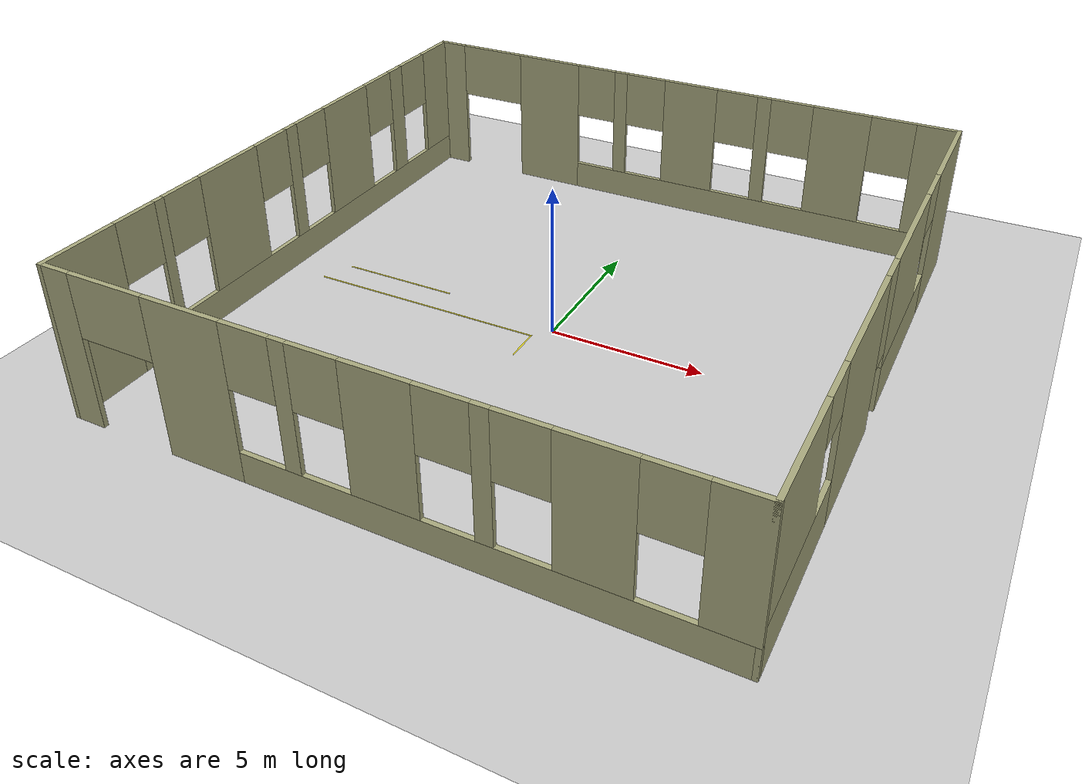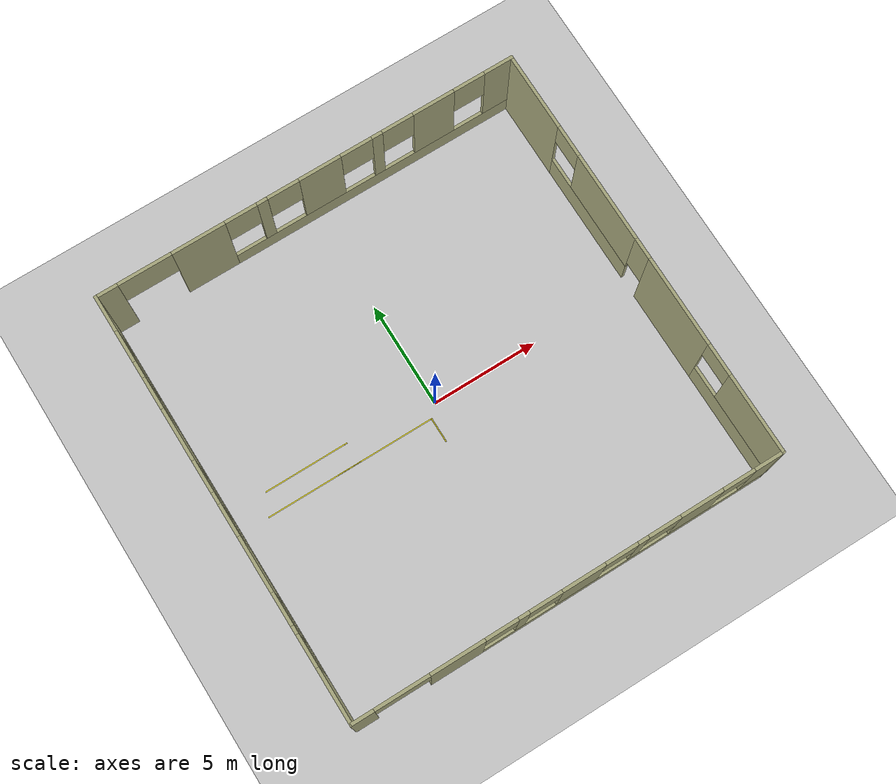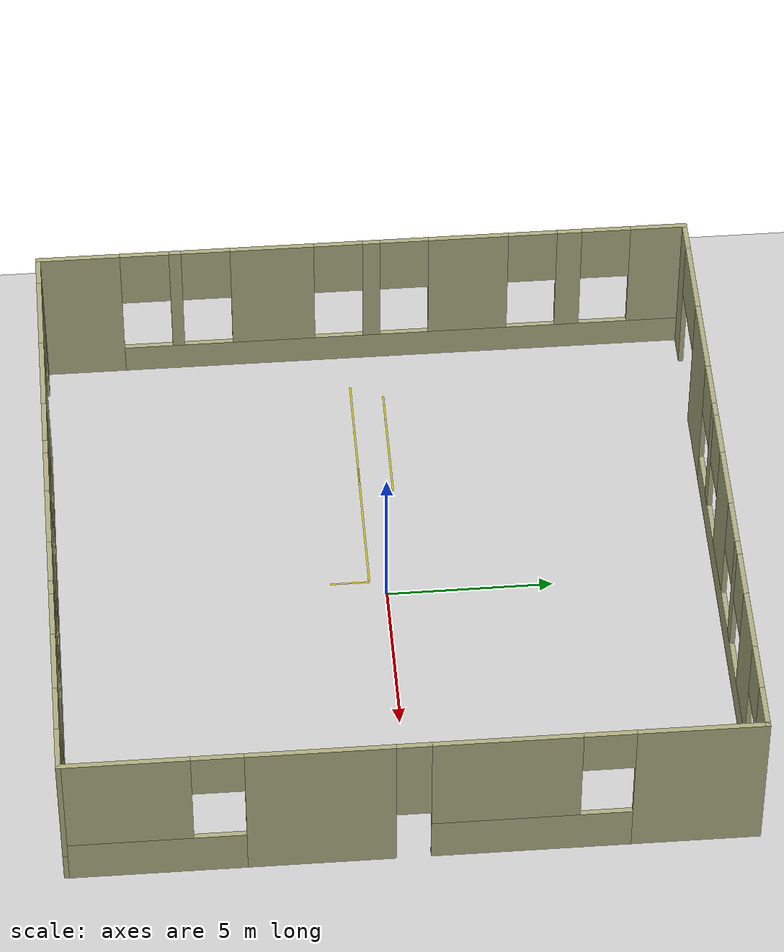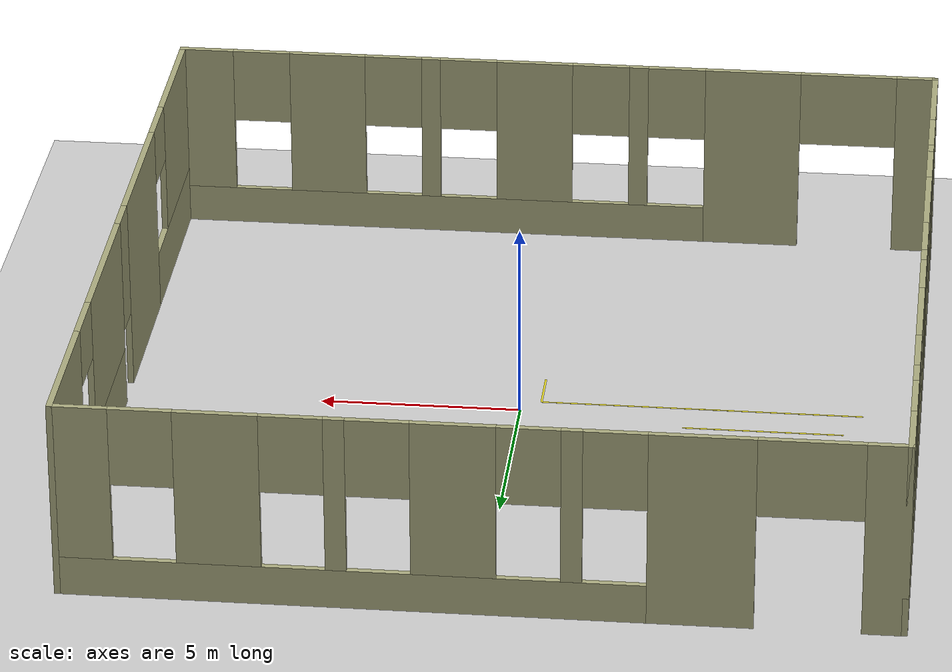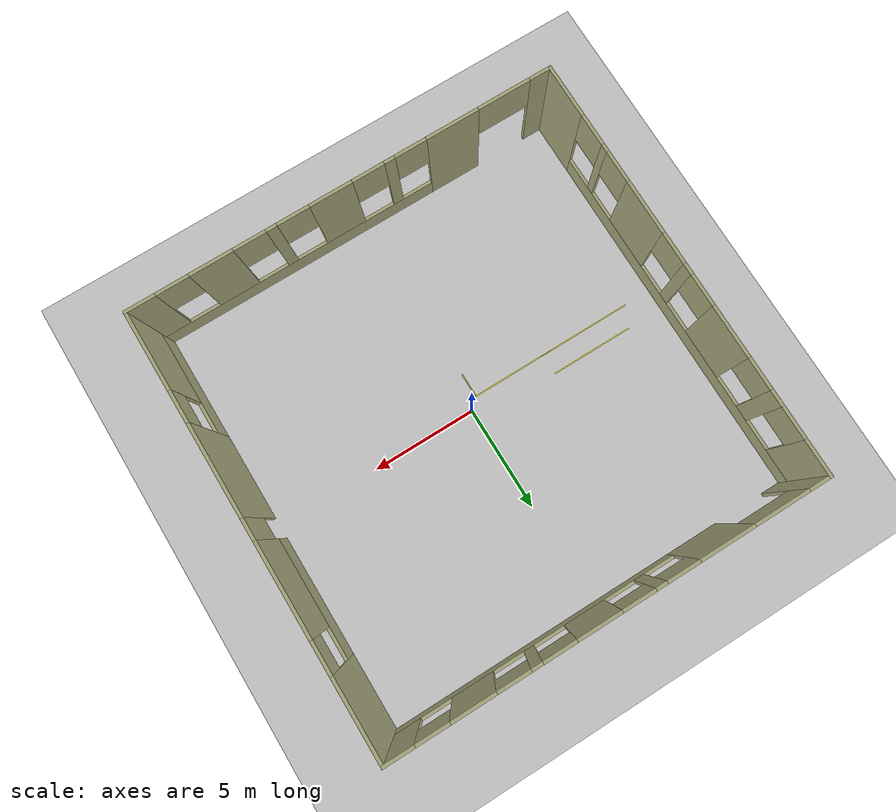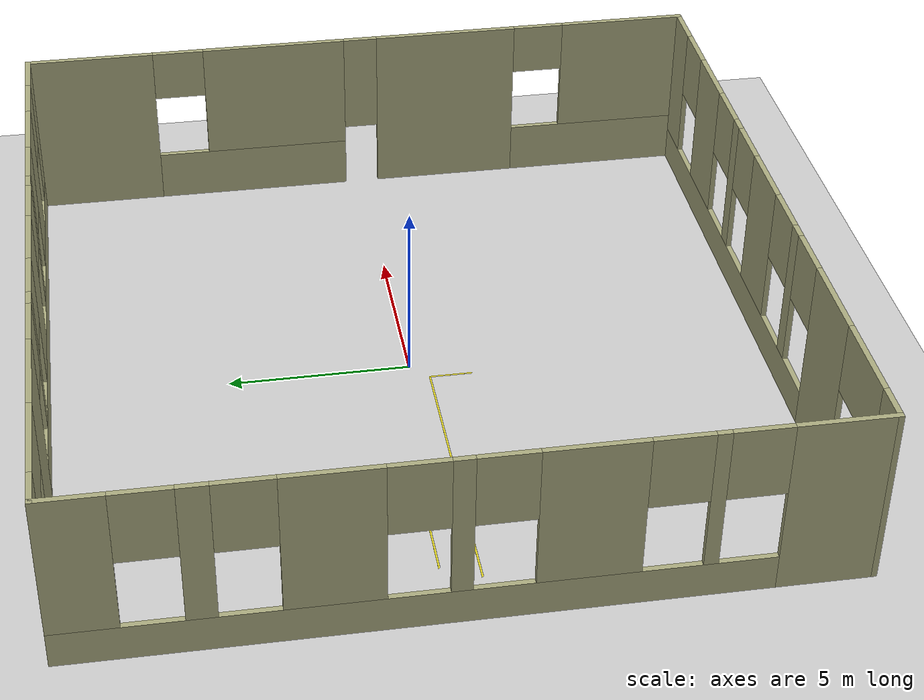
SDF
<sdf version="1.7">
 <world name="default">
  <model name="ground_plane">
   <static>1</static>
   <link name="link">
    <collision name="collision">
     <geometry><plane><normal>0 0 1</normal><size>100 100</size></plane></geometry>
     <surface>
      <contact><collide_bitmask>65535</collide_bitmask></contact>
      <friction><ode><mu>100</mu><mu2>50</mu2></ode></friction>
     </surface>
    </collision>
    <visual name="visual">
     <cast_shadows>0</cast_shadows>
     <geometry><plane><normal>0 0 1</normal><size>100 100</size></plane></geometry>
     <material>
      <script><uri>file://media/materials/scripts/gazebo.material</uri><name>Gazebo/Grey</name></script>
     </material>
    </visual>
   </link>
  </model>
  <model name="20x20">
   <link name="Wall_10">
    <pose>0 -9.925 0 0 -0 0</pose>
    <visual name="Wall_10_Visual_0">
     <pose>-9.46251 0 2.5 0 -0 0</pose>
     <geometry><box><size>1.07503 0.15 5</size></box></geometry>
     <material>
      <script><uri>file://media/materials/scripts/gazebo.material</uri><name>Gazebo/Grey</name></script>
      <ambient>0.666667 0.666667 0.498039 1</ambient>
     </material>
    </visual>
    <collision name="Wall_10_Collision_0">
     <geometry><box><size>1.07503 0.15 5</size></box></geometry>
     <pose>-9.46251 0 2.5 0 -0 0</pose>
    </collision>
    <visual name="Wall_10_Visual_1">
     <pose>-5.175 0 2.5 0 -0 0</pose>
     <geometry><box><size>2.5 0.15 5</size></box></geometry>
     <material>
      <script><uri>file://media/materials/scripts/gazebo.material</uri><name>Gazebo/Grey</name></script>
      <ambient>0.666667 0.666667 0.498039 1</ambient>
     </material>
    </visual>
    <collision name="Wall_10_Collision_1">
     <geometry><box><size>2.5 0.15 5</size></box></geometry>
     <pose>-5.175 0 2.5 0 -0 0</pose>
    </collision>
    <visual name="Wall_10_Visual_2">
     <pose>3.03751 0 0.5 0 -0 0</pose>
     <geometry><box><size>13.925 0.15 1</size></box></geometry>
     <material>
      <script><uri>file://media/materials/scripts/gazebo.material</uri><name>Gazebo/Grey</name></script>
      <ambient>0.666667 0.666667 0.498039 1</ambient>
     </material>
    </visual>
    <collision name="Wall_10_Collision_2">
     <geometry><box><size>13.925 0.15 1</size></box></geometry>
     <pose>3.03751 0 0.5 0 -0 0</pose>
    </collision>
    <visual name="Wall_10_Visual_3">
     <pose>-2.175 0 3 0 -0 0</pose>
     <geometry><box><size>0.5 0.15 4</size></box></geometry>
     <material>
      <script><uri>file://media/materials/scripts/gazebo.material</uri><name>Gazebo/Grey</name></script>
      <ambient>0.666667 0.666667 0.498039 1</ambient>
     </material>
    </visual>
    <collision name="Wall_10_Collision_3">
     <geometry><box><size>0.5 0.15 4</size></box></geometry>
     <pose>-2.175 0 3 0 -0 0</pose>
    </collision>
    <visual name="Wall_10_Visual_4">
     <pose>0.575 0 3 0 -0 0</pose>
     <geometry><box><size>2 0.15 4</size></box></geometry>
     <material>
      <script><uri>file://media/materials/scripts/gazebo.material</uri><name>Gazebo/Grey</name></script>
      <ambient>0.666667 0.666667 0.498039 1</ambient>
     </material>
    </visual>
    <collision name="Wall_10_Collision_4">
     <geometry><box><size>2 0.15 4</size></box></geometry>
     <pose>0.575 0 3 0 -0 0</pose>
    </collision>
    <visual name="Wall_10_Visual_5">
     <pose>3.325 0 3 0 -0 0</pose>
     <geometry><box><size>0.5 0.15 4</size></box></geometry>
     <material>
      <script><uri>file://media/materials/scripts/gazebo.material</uri><name>Gazebo/Grey</name></script>
      <ambient>0.666667 0.666667 0.498039 1</ambient>
     </material>
    </visual>
    <collision name="Wall_10_Collision_5">
     <geometry><box><size>0.5 0.15 4</size></box></geometry>
     <pose>3.325 0 3 0 -0 0</pose>
    </collision>
    <visual name="Wall_10_Visual_6">
     <pose>6.075 0 3 0 -0 0</pose>
     <geometry><box><size>2 0.15 4</size></box></geometry>
     <material>
      <script><uri>file://media/materials/scripts/gazebo.material</uri><name>Gazebo/Grey</name></script>
      <ambient>0.666667 0.666667 0.498039 1</ambient>
     </material>
    </visual>
    <collision name="Wall_10_Collision_6">
     <geometry><box><size>2 0.15 4</size></box></geometry>
     <pose>6.075 0 3 0 -0 0</pose>
    </collision>
    <visual name="Wall_10_Visual_7">
     <pose>9.28752 0 3 0 -0 0</pose>
     <geometry><box><size>1.42503 0.15 4</size></box></geometry>
     <material>
      <script><uri>file://media/materials/scripts/gazebo.material</uri><name>Gazebo/Grey</name></script>
      <ambient>0.666667 0.666667 0.498039 1</ambient>
     </material>
    </visual>
    <collision name="Wall_10_Collision_7">
     <geometry><box><size>1.42503 0.15 4</size></box></geometry>
     <pose>9.28752 0 3 0 -0 0</pose>
    </collision>
    <visual name="Wall_10_Visual_8">
     <pose>-7.675 0 4 0 -0 0</pose>
     <geometry><box><size>2.5 0.15 2</size></box></geometry>
     <material>
      <script><uri>file://media/materials/scripts/gazebo.material</uri><name>Gazebo/Grey</name></script>
      <ambient>0.666667 0.666667 0.498039 1</ambient>
     </material>
    </visual>
    <collision name="Wall_10_Collision_8">
     <geometry><box><size>2.5 0.15 2</size></box></geometry>
     <pose>-7.675 0 4 0 -0 0</pose>
    </collision>
    <visual name="Wall_10_Visual_9">
     <pose>-3.175 0 4 0 -0 0</pose>
     <geometry><box><size>1.5 0.15 2</size></box></geometry>
     <material>
      <script><uri>file://media/materials/scripts/gazebo.material</uri><name>Gazebo/Grey</name></script>
      <ambient>0.666667 0.666667 0.498039 1</ambient>
     </material>
    </visual>
    <collision name="Wall_10_Collision_9">
     <geometry><box><size>1.5 0.15 2</size></box></geometry>
     <pose>-3.175 0 4 0 -0 0</pose>
    </collision>
    <visual name="Wall_10_Visual_10">
     <pose>-1.175 0 4 0 -0 0</pose>
     <geometry><box><size>1.5 0.15 2</size></box></geometry>
     <material>
      <script><uri>file://media/materials/scripts/gazebo.material</uri><name>Gazebo/Grey</name></script>
      <ambient>0.666667 0.666667 0.498039 1</ambient>
     </material>
    </visual>
    <collision name="Wall_10_Collision_10">
     <geometry><box><size>1.5 0.15 2</size></box></geometry>
     <pose>-1.175 0 4 0 -0 0</pose>
    </collision>
    <visual name="Wall_10_Visual_11">
     <pose>2.325 0 4 0 -0 0</pose>
     <geometry><box><size>1.5 0.15 2</size></box></geometry>
     <material>
      <script><uri>file://media/materials/scripts/gazebo.material</uri><name>Gazebo/Grey</name></script>
      <ambient>0.666667 0.666667 0.498039 1</ambient>
     </material>
    </visual>
    <collision name="Wall_10_Collision_11">
     <geometry><box><size>1.5 0.15 2</size></box></geometry>
     <pose>2.325 0 4 0 -0 0</pose>
    </collision>
    <visual name="Wall_10_Visual_12">
     <pose>4.325 0 4 0 -0 0</pose>
     <geometry><box><size>1.5 0.15 2</size></box></geometry>
     <material>
      <script><uri>file://media/materials/scripts/gazebo.material</uri><name>Gazebo/Grey</name></script>
      <ambient>0.666667 0.666667 0.498039 1</ambient>
     </material>
    </visual>
    <collision name="Wall_10_Collision_12">
     <geometry><box><size>1.5 0.15 2</size></box></geometry>
     <pose>4.325 0 4 0 -0 0</pose>
    </collision>
    <visual name="Wall_10_Visual_13">
     <pose>7.825 0 4 0 -0 0</pose>
     <geometry><box><size>1.5 0.15 2</size></box></geometry>
     <material>
      <script><uri>file://media/materials/scripts/gazebo.material</uri><name>Gazebo/Grey</name></script>
      <ambient>0.666667 0.666667 0.498039 1</ambient>
     </material>
    </visual>
    <collision name="Wall_10_Collision_13">
     <geometry><box><size>1.5 0.15 2</size></box></geometry>
     <pose>7.825 0 4 0 -0 0</pose>
    </collision>
   </link>
   <link name="Wall_41">
    <pose>9.925 0 0 0 0 -1.5708</pose>
    <visual name="Wall_41_Visual_0">
     <pose>-8.125 0 2.5 0 -0 0</pose>
     <geometry><box><size>3.75 0.15 5</size></box></geometry>
     <material>
      <script><uri>file://media/materials/scripts/gazebo.material</uri><name>Gazebo/Grey</name></script>
      <ambient>0.666667 0.666667 0.498039 1</ambient>
     </material>
    </visual>
    <collision name="Wall_41_Collision_0">
     <geometry><box><size>3.75 0.15 5</size></box></geometry>
     <pose>-8.125 0 2.5 0 -0 0</pose>
    </collision>
    <visual name="Wall_41_Visual_1">
     <pose>2.625 0 2.5 0 -0 0</pose>
     <geometry><box><size>4.25 0.15 5</size></box></geometry>
     <material>
      <script><uri>file://media/materials/scripts/gazebo.material</uri><name>Gazebo/Grey</name></script>
      <ambient>0.666667 0.666667 0.498039 1</ambient>
     </material>
    </visual>
    <collision name="Wall_41_Collision_1">
     <geometry><box><size>4.25 0.15 5</size></box></geometry>
     <pose>2.625 0 2.5 0 -0 0</pose>
    </collision>
    <visual name="Wall_41_Visual_2">
     <pose>-3.375 0 0.75 0 -0 0</pose>
     <geometry><box><size>5.75 0.15 1.5</size></box></geometry>
     <material>
      <script><uri>file://media/materials/scripts/gazebo.material</uri><name>Gazebo/Grey</name></script>
      <ambient>0.666667 0.666667 0.498039 1</ambient>
     </material>
    </visual>
    <collision name="Wall_41_Collision_2">
     <geometry><box><size>5.75 0.15 1.5</size></box></geometry>
     <pose>-3.375 0 0.75 0 -0 0</pose>
    </collision>
    <visual name="Wall_41_Visual_3">
     <pose>7.375 0 0.75 0 -0 0</pose>
     <geometry><box><size>5.25 0.15 1.5</size></box></geometry>
     <material>
      <script><uri>file://media/materials/scripts/gazebo.material</uri><name>Gazebo/Grey</name></script>
      <ambient>0.666667 0.666667 0.498039 1</ambient>
     </material>
    </visual>
    <collision name="Wall_41_Collision_3">
     <geometry><box><size>5.25 0.15 1.5</size></box></geometry>
     <pose>7.375 0 0.75 0 -0 0</pose>
    </collision>
    <visual name="Wall_41_Visual_4">
     <pose>-2.625 0 3.25 0 -0 0</pose>
     <geometry><box><size>4.25 0.15 3.5</size></box></geometry>
     <material>
      <script><uri>file://media/materials/scripts/gazebo.material</uri><name>Gazebo/Grey</name></script>
      <ambient>0.666667 0.666667 0.498039 1</ambient>
     </material>
    </visual>
    <collision name="Wall_41_Collision_4">
     <geometry><box><size>4.25 0.15 3.5</size></box></geometry>
     <pose>-2.625 0 3.25 0 -0 0</pose>
    </collision>
    <visual name="Wall_41_Visual_5">
     <pose>-2.625 0 3.25 0 -0 0</pose>
     <geometry><box><size>4.25 0.15 3.5</size></box></geometry>
     <material>
      <script><uri>file://media/materials/scripts/gazebo.material</uri><name>Gazebo/Grey</name></script>
      <ambient>0.666667 0.666667 0.498039 1</ambient>
     </material>
    </visual>
    <collision name="Wall_41_Collision_5">
     <geometry><box><size>4.25 0.15 3.5</size></box></geometry>
     <pose>-2.625 0 3.25 0 -0 0</pose>
    </collision>
    <visual name="Wall_41_Visual_6">
     <pose>8.125 0 3.25 0 -0 0</pose>
     <geometry><box><size>3.75 0.15 3.5</size></box></geometry>
     <material>
      <script><uri>file://media/materials/scripts/gazebo.material</uri><name>Gazebo/Grey</name></script>
      <ambient>0.666667 0.666667 0.498039 1</ambient>
     </material>
    </visual>
    <collision name="Wall_41_Collision_6">
     <geometry><box><size>3.75 0.15 3.5</size></box></geometry>
     <pose>8.125 0 3.25 0 -0 0</pose>
    </collision>
    <visual name="Wall_41_Visual_7">
     <pose>0 0 3.5 0 -0 0</pose>
     <geometry><box><size>1 0.15 3</size></box></geometry>
     <material>
      <script><uri>file://media/materials/scripts/gazebo.material</uri><name>Gazebo/Grey</name></script>
      <ambient>0.666667 0.666667 0.498039 1</ambient>
     </material>
    </visual>
    <collision name="Wall_41_Collision_7">
     <geometry><box><size>1 0.15 3</size></box></geometry>
     <pose>0 0 3.5 0 -0 0</pose>
    </collision>
    <visual name="Wall_41_Visual_8">
     <pose>0 0 3.5 0 -0 0</pose>
     <geometry><box><size>1 0.15 3</size></box></geometry>
     <material>
      <script><uri>file://media/materials/scripts/gazebo.material</uri><name>Gazebo/Grey</name></script>
      <ambient>0.666667 0.666667 0.498039 1</ambient>
     </material>
    </visual>
    <collision name="Wall_41_Collision_8">
     <geometry><box><size>1 0.15 3</size></box></geometry>
     <pose>0 0 3.5 0 -0 0</pose>
    </collision>
    <visual name="Wall_41_Visual_9">
     <pose>-5.5 0 4.25 0 -0 0</pose>
     <geometry><box><size>1.5 0.15 1.5</size></box></geometry>
     <material>
      <script><uri>file://media/materials/scripts/gazebo.material</uri><name>Gazebo/Grey</name></script>
      <ambient>0.666667 0.666667 0.498039 1</ambient>
     </material>
    </visual>
    <collision name="Wall_41_Collision_9">
     <geometry><box><size>1.5 0.15 1.5</size></box></geometry>
     <pose>-5.5 0 4.25 0 -0 0</pose>
    </collision>
    <visual name="Wall_41_Visual_10">
     <pose>5.5 0 4.25 0 -0 0</pose>
     <geometry><box><size>1.5 0.15 1.5</size></box></geometry>
     <material>
      <script><uri>file://media/materials/scripts/gazebo.material</uri><name>Gazebo/Grey</name></script>
      <ambient>0.666667 0.666667 0.498039 1</ambient>
     </material>
    </visual>
    <collision name="Wall_41_Collision_10">
     <geometry><box><size>1.5 0.15 1.5</size></box></geometry>
     <pose>5.5 0 4.25 0 -0 0</pose>
    </collision>
   </link>
   <link name="Wall_6">
    <pose>-9.925 0 0 0 -0 1.5708</pose>
    <visual name="Wall_6_Visual_0">
     <pose>-8.71763 0 2.5 0 -0 0</pose>
     <geometry><box><size>2.56474 0.15 5</size></box></geometry>
     <material>
      <script><uri>file://media/materials/scripts/gazebo.material</uri><name>Gazebo/Grey</name></script>
      <ambient>0.666667 0.666667 0.498039 1</ambient>
     </material>
    </visual>
    <collision name="Wall_6_Collision_0">
     <geometry><box><size>2.56474 0.15 5</size></box></geometry>
     <pose>-8.71763 0 2.5 0 -0 0</pose>
    </collision>
    <visual name="Wall_6_Visual_1">
     <pose>1.28237 0 0.5 0 -0 0</pose>
     <geometry><box><size>17.4353 0.15 1</size></box></geometry>
     <material>
      <script><uri>file://media/materials/scripts/gazebo.material</uri><name>Gazebo/Grey</name></script>
      <ambient>0.666667 0.666667 0.498039 1</ambient>
     </material>
    </visual>
    <collision name="Wall_6_Collision_1">
     <geometry><box><size>17.4353 0.15 1</size></box></geometry>
     <pose>1.28237 0 0.5 0 -0 0</pose>
    </collision>
    <visual name="Wall_6_Visual_2">
     <pose>-5.74896 0 3 0 -0 0</pose>
     <geometry><box><size>0.372588 0.15 4</size></box></geometry>
     <material>
      <script><uri>file://media/materials/scripts/gazebo.material</uri><name>Gazebo/Grey</name></script>
      <ambient>0.666667 0.666667 0.498039 1</ambient>
     </material>
    </visual>
    <collision name="Wall_6_Collision_2">
     <geometry><box><size>0.372588 0.15 4</size></box></geometry>
     <pose>-5.74896 0 3 0 -0 0</pose>
    </collision>
    <visual name="Wall_6_Visual_3">
     <pose>-2.77957 0 3 0 -0 0</pose>
     <geometry><box><size>2.56619 0.15 4</size></box></geometry>
     <material>
      <script><uri>file://media/materials/scripts/gazebo.material</uri><name>Gazebo/Grey</name></script>
      <ambient>0.666667 0.666667 0.498039 1</ambient>
     </material>
    </visual>
    <collision name="Wall_6_Collision_3">
     <geometry><box><size>2.56619 0.15 4</size></box></geometry>
     <pose>-2.77957 0 3 0 -0 0</pose>
    </collision>
    <visual name="Wall_6_Visual_4">
     <pose>0.270069 0 3 0 -0 0</pose>
     <geometry><box><size>0.533095 0.15 4</size></box></geometry>
     <material>
      <script><uri>file://media/materials/scripts/gazebo.material</uri><name>Gazebo/Grey</name></script>
      <ambient>0.666667 0.666667 0.498039 1</ambient>
     </material>
    </visual>
    <collision name="Wall_6_Collision_4">
     <geometry><box><size>0.533095 0.15 4</size></box></geometry>
     <pose>0.270069 0 3 0 -0 0</pose>
    </collision>
    <visual name="Wall_6_Visual_5">
     <pose>3.26574 0 3 0 -0 0</pose>
     <geometry><box><size>2.45825 0.15 4</size></box></geometry>
     <material>
      <script><uri>file://media/materials/scripts/gazebo.material</uri><name>Gazebo/Grey</name></script>
      <ambient>0.666667 0.666667 0.498039 1</ambient>
     </material>
    </visual>
    <collision name="Wall_6_Collision_5">
     <geometry><box><size>2.45825 0.15 4</size></box></geometry>
     <pose>3.26574 0 3 0 -0 0</pose>
    </collision>
    <visual name="Wall_6_Visual_6">
     <pose>6.37762 0 3 0 -0 0</pose>
     <geometry><box><size>0.765512 0.15 4</size></box></geometry>
     <material>
      <script><uri>file://media/materials/scripts/gazebo.material</uri><name>Gazebo/Grey</name></script>
      <ambient>0.666667 0.666667 0.498039 1</ambient>
     </material>
    </visual>
    <collision name="Wall_6_Collision_6">
     <geometry><box><size>0.765512 0.15 4</size></box></geometry>
     <pose>6.37762 0 3 0 -0 0</pose>
    </collision>
    <visual name="Wall_6_Visual_7">
     <pose>9.13019 0 3 0 -0 0</pose>
     <geometry><box><size>1.73962 0.15 4</size></box></geometry>
     <material>
      <script><uri>file://media/materials/scripts/gazebo.material</uri><name>Gazebo/Grey</name></script>
      <ambient>0.666667 0.666667 0.498039 1</ambient>
     </material>
    </visual>
    <collision name="Wall_6_Collision_7">
     <geometry><box><size>1.73962 0.15 4</size></box></geometry>
     <pose>9.13019 0 3 0 -0 0</pose>
    </collision>
    <visual name="Wall_6_Visual_8">
     <pose>-6.68526 0 4 0 -0 0</pose>
     <geometry><box><size>1.5 0.15 2</size></box></geometry>
     <material>
      <script><uri>file://media/materials/scripts/gazebo.material</uri><name>Gazebo/Grey</name></script>
      <ambient>0.666667 0.666667 0.498039 1</ambient>
     </material>
    </visual>
    <collision name="Wall_6_Collision_8">
     <geometry><box><size>1.5 0.15 2</size></box></geometry>
     <pose>-6.68526 0 4 0 -0 0</pose>
    </collision>
    <visual name="Wall_6_Visual_9">
     <pose>-4.81267 0 4 0 -0 0</pose>
     <geometry><box><size>1.5 0.15 2</size></box></geometry>
     <material>
      <script><uri>file://media/materials/scripts/gazebo.material</uri><name>Gazebo/Grey</name></script>
      <ambient>0.666667 0.666667 0.498039 1</ambient>
     </material>
    </visual>
    <collision name="Wall_6_Collision_9">
     <geometry><box><size>1.5 0.15 2</size></box></geometry>
     <pose>-4.81267 0 4 0 -0 0</pose>
    </collision>
    <visual name="Wall_6_Visual_10">
     <pose>-0.746479 0 4 0 -0 0</pose>
     <geometry><box><size>1.5 0.15 2</size></box></geometry>
     <material>
      <script><uri>file://media/materials/scripts/gazebo.material</uri><name>Gazebo/Grey</name></script>
      <ambient>0.666667 0.666667 0.498039 1</ambient>
     </material>
    </visual>
    <collision name="Wall_6_Collision_10">
     <geometry><box><size>1.5 0.15 2</size></box></geometry>
     <pose>-0.746479 0 4 0 -0 0</pose>
    </collision>
    <visual name="Wall_6_Visual_11">
     <pose>1.28662 0 4 0 -0 0</pose>
     <geometry><box><size>1.5 0.15 2</size></box></geometry>
     <material>
      <script><uri>file://media/materials/scripts/gazebo.material</uri><name>Gazebo/Grey</name></script>
      <ambient>0.666667 0.666667 0.498039 1</ambient>
     </material>
    </visual>
    <collision name="Wall_6_Collision_11">
     <geometry><box><size>1.5 0.15 2</size></box></geometry>
     <pose>1.28662 0 4 0 -0 0</pose>
    </collision>
    <visual name="Wall_6_Visual_12">
     <pose>5.24486 0 4 0 -0 0</pose>
     <geometry><box><size>1.5 0.15 2</size></box></geometry>
     <material>
      <script><uri>file://media/materials/scripts/gazebo.material</uri><name>Gazebo/Grey</name></script>
      <ambient>0.666667 0.666667 0.498039 1</ambient>
     </material>
    </visual>
    <collision name="Wall_6_Collision_12">
     <geometry><box><size>1.5 0.15 2</size></box></geometry>
     <pose>5.24486 0 4 0 -0 0</pose>
    </collision>
    <visual name="Wall_6_Visual_13">
     <pose>7.51038 0 4 0 -0 0</pose>
     <geometry><box><size>1.5 0.15 2</size></box></geometry>
     <material>
      <script><uri>file://media/materials/scripts/gazebo.material</uri><name>Gazebo/Grey</name></script>
      <ambient>0.666667 0.666667 0.498039 1</ambient>
     </material>
    </visual>
    <collision name="Wall_6_Collision_13">
     <geometry><box><size>1.5 0.15 2</size></box></geometry>
     <pose>7.51038 0 4 0 -0 0</pose>
    </collision>
   </link>
   <link name="Wall_7">
    <pose>0 9.925 0 0 -0 0</pose>
    <visual name="Wall_7_Visual_0">
     <pose>-9.4625 0 2.5 0 -0 0</pose>
     <geometry><box><size>1.075 0.15 5</size></box></geometry>
     <material>
      <script><uri>file://media/materials/scripts/gazebo.material</uri><name>Gazebo/Grey</name></script>
      <ambient>0.666667 0.666667 0.498039 1</ambient>
     </material>
    </visual>
    <collision name="Wall_7_Collision_0">
     <geometry><box><size>1.075 0.15 5</size></box></geometry>
     <pose>-9.4625 0 2.5 0 -0 0</pose>
    </collision>
    <visual name="Wall_7_Visual_1">
     <pose>-5.175 0 2.5 0 -0 0</pose>
     <geometry><box><size>2.5 0.15 5</size></box></geometry>
     <material>
      <script><uri>file://media/materials/scripts/gazebo.material</uri><name>Gazebo/Grey</name></script>
      <ambient>0.666667 0.666667 0.498039 1</ambient>
     </material>
    </visual>
    <collision name="Wall_7_Collision_1">
     <geometry><box><size>2.5 0.15 5</size></box></geometry>
     <pose>-5.175 0 2.5 0 -0 0</pose>
    </collision>
    <visual name="Wall_7_Visual_2">
     <pose>3.0375 0 0.5 0 -0 0</pose>
     <geometry><box><size>13.925 0.15 1</size></box></geometry>
     <material>
      <script><uri>file://media/materials/scripts/gazebo.material</uri><name>Gazebo/Grey</name></script>
      <ambient>0.666667 0.666667 0.498039 1</ambient>
     </material>
    </visual>
    <collision name="Wall_7_Collision_2">
     <geometry><box><size>13.925 0.15 1</size></box></geometry>
     <pose>3.0375 0 0.5 0 -0 0</pose>
    </collision>
    <visual name="Wall_7_Visual_3">
     <pose>-2.175 0 3 0 -0 0</pose>
     <geometry><box><size>0.5 0.15 4</size></box></geometry>
     <material>
      <script><uri>file://media/materials/scripts/gazebo.material</uri><name>Gazebo/Grey</name></script>
      <ambient>0.666667 0.666667 0.498039 1</ambient>
     </material>
    </visual>
    <collision name="Wall_7_Collision_3">
     <geometry><box><size>0.5 0.15 4</size></box></geometry>
     <pose>-2.175 0 3 0 -0 0</pose>
    </collision>
    <visual name="Wall_7_Visual_4">
     <pose>0.575 0 3 0 -0 0</pose>
     <geometry><box><size>2 0.15 4</size></box></geometry>
     <material>
      <script><uri>file://media/materials/scripts/gazebo.material</uri><name>Gazebo/Grey</name></script>
      <ambient>0.666667 0.666667 0.498039 1</ambient>
     </material>
    </visual>
    <collision name="Wall_7_Collision_4">
     <geometry><box><size>2 0.15 4</size></box></geometry>
     <pose>0.575 0 3 0 -0 0</pose>
    </collision>
    <visual name="Wall_7_Visual_5">
     <pose>3.325 0 3 0 -0 0</pose>
     <geometry><box><size>0.5 0.15 4</size></box></geometry>
     <material>
      <script><uri>file://media/materials/scripts/gazebo.material</uri><name>Gazebo/Grey</name></script>
      <ambient>0.666667 0.666667 0.498039 1</ambient>
     </material>
    </visual>
    <collision name="Wall_7_Collision_5">
     <geometry><box><size>0.5 0.15 4</size></box></geometry>
     <pose>3.325 0 3 0 -0 0</pose>
    </collision>
    <visual name="Wall_7_Visual_6">
     <pose>6.075 0 3 0 -0 0</pose>
     <geometry><box><size>2 0.15 4</size></box></geometry>
     <material>
      <script><uri>file://media/materials/scripts/gazebo.material</uri><name>Gazebo/Grey</name></script>
      <ambient>0.666667 0.666667 0.498039 1</ambient>
     </material>
    </visual>
    <collision name="Wall_7_Collision_6">
     <geometry><box><size>2 0.15 4</size></box></geometry>
     <pose>6.075 0 3 0 -0 0</pose>
    </collision>
    <visual name="Wall_7_Visual_7">
     <pose>9.2875 0 3 0 -0 0</pose>
     <geometry><box><size>1.425 0.15 4</size></box></geometry>
     <material>
      <script><uri>file://media/materials/scripts/gazebo.material</uri><name>Gazebo/Grey</name></script>
      <ambient>0.666667 0.666667 0.498039 1</ambient>
     </material>
    </visual>
    <collision name="Wall_7_Collision_7">
     <geometry><box><size>1.425 0.15 4</size></box></geometry>
     <pose>9.2875 0 3 0 -0 0</pose>
    </collision>
    <visual name="Wall_7_Visual_8">
     <pose>-7.675 0 4 0 -0 0</pose>
     <geometry><box><size>2.5 0.15 2</size></box></geometry>
     <material>
      <script><uri>file://media/materials/scripts/gazebo.material</uri><name>Gazebo/Grey</name></script>
      <ambient>0.666667 0.666667 0.498039 1</ambient>
     </material>
    </visual>
    <collision name="Wall_7_Collision_8">
     <geometry><box><size>2.5 0.15 2</size></box></geometry>
     <pose>-7.675 0 4 0 -0 0</pose>
    </collision>
    <visual name="Wall_7_Visual_9">
     <pose>-3.175 0 4 0 -0 0</pose>
     <geometry><box><size>1.5 0.15 2</size></box></geometry>
     <material>
      <script><uri>file://media/materials/scripts/gazebo.material</uri><name>Gazebo/Grey</name></script>
      <ambient>0.666667 0.666667 0.498039 1</ambient>
     </material>
    </visual>
    <collision name="Wall_7_Collision_9">
     <geometry><box><size>1.5 0.15 2</size></box></geometry>
     <pose>-3.175 0 4 0 -0 0</pose>
    </collision>
    <visual name="Wall_7_Visual_10">
     <pose>-1.175 0 4 0 -0 0</pose>
     <geometry><box><size>1.5 0.15 2</size></box></geometry>
     <material>
      <script><uri>file://media/materials/scripts/gazebo.material</uri><name>Gazebo/Grey</name></script>
      <ambient>0.666667 0.666667 0.498039 1</ambient>
     </material>
    </visual>
    <collision name="Wall_7_Collision_10">
     <geometry><box><size>1.5 0.15 2</size></box></geometry>
     <pose>-1.175 0 4 0 -0 0</pose>
    </collision>
    <visual name="Wall_7_Visual_11">
     <pose>2.325 0 4 0 -0 0</pose>
     <geometry><box><size>1.5 0.15 2</size></box></geometry>
     <material>
      <script><uri>file://media/materials/scripts/gazebo.material</uri><name>Gazebo/Grey</name></script>
      <ambient>0.666667 0.666667 0.498039 1</ambient>
     </material>
    </visual>
    <collision name="Wall_7_Collision_11">
     <geometry><box><size>1.5 0.15 2</size></box></geometry>
     <pose>2.325 0 4 0 -0 0</pose>
    </collision>
    <visual name="Wall_7_Visual_12">
     <pose>4.325 0 4 0 -0 0</pose>
     <geometry><box><size>1.5 0.15 2</size></box></geometry>
     <material>
      <script><uri>file://media/materials/scripts/gazebo.material</uri><name>Gazebo/Grey</name></script>
      <ambient>0.666667 0.666667 0.498039 1</ambient>
     </material>
    </visual>
    <collision name="Wall_7_Collision_12">
     <geometry><box><size>1.5 0.15 2</size></box></geometry>
     <pose>4.325 0 4 0 -0 0</pose>
    </collision>
    <visual name="Wall_7_Visual_13">
     <pose>7.825 0 4 0 -0 0</pose>
     <geometry><box><size>1.5 0.15 2</size></box></geometry>
     <material>
      <script><uri>file://media/materials/scripts/gazebo.material</uri><name>Gazebo/Grey</name></script>
      <ambient>0.666667 0.666667 0.498039 1</ambient>
     </material>
    </visual>
    <collision name="Wall_7_Collision_13">
     <geometry><box><size>1.5 0.15 2</size></box></geometry>
     <pose>7.825 0 4 0 -0 0</pose>
    </collision>
   </link>
   <static>1</static>
  </model>
  <model name="line4m_29">
   <link name="link_3">
    <inertial>
     <mass>1</mass>
     <inertia>
      <ixx>0.166667</ixx>
      <ixy>0</ixy>
      <ixz>0</ixz>
      <iyy>0.166667</iyy>
      <iyz>0</iyz>
      <izz>0.166667</izz>
     </inertia>
    </inertial>
    <visual name="visual">
     <geometry><box><size>0.05 4 0.001</size></box></geometry>
     <material>
      <lighting>1</lighting>
      <script><uri>file://media/materials/scripts/gazebo.material</uri><name>Gazebo/Yellow</name></script>
     </material>
    </visual>
    <collision name="collision">
     <geometry><box><size>0.05 4 1e-06</size></box></geometry>
     <surface>
      <friction>
       <ode><mu>1</mu><mu2>1</mu2><fdir1>0 0 0</fdir1><slip1>0</slip1><slip2>0</slip2></ode>
       <torsional>
        <coefficient>1</coefficient>
        <patch_radius>0</patch_radius>
        <surface_radius>0</surface_radius>
        <use_patch_radius>1</use_patch_radius>
        <ode><slip>0</slip></ode>
       </torsional>
      </friction>
      <bounce><restitution_coefficient>0</restitution_coefficient><threshold>1e+06</threshold></bounce>
      <contact>
       <collide_without_contact>0</collide_without_contact>
       <collide_without_contact_bitmask>1</collide_without_contact_bitmask>
       <collide_bitmask>1</collide_bitmask>
       <ode>
        <soft_cfm>0</soft_cfm>
        <soft_erp>0.2</soft_erp>
        <kp>1e+13</kp>
        <kd>1</kd>
        <max_vel>0.01</max_vel>
        <min_depth>0</min_depth>
       </ode>
       <bullet>
        <split_impulse>1</split_impulse>
        <split_impulse_penetration_threshold>-0.01</split_impulse_penetration_threshold>
        <soft_cfm>0</soft_cfm>
        <soft_erp>0.2</soft_erp>
        <kp>1e+13</kp>
        <kd>1</kd>
       </bullet>
      </contact>
     </surface>
    </collision>
   </link>
   <static>1</static>
   <pose>-2.4785 -0.5 0 0 -0 1.571</pose>
  </model>
  <model name="line120cm_10">
   <link name="link_1">
    <inertial>
     <mass>1</mass>
     <inertia>
      <ixx>0.166667</ixx>
      <ixy>0</ixy>
      <ixz>0</ixz>
      <iyy>0.166667</iyy>
      <iyz>0</iyz>
      <izz>0.166667</izz>
     </inertia>
    </inertial>
    <visual name="visual">
     <geometry><box><size>1.2 0.05 0.001</size></box></geometry>
     <material>
      <script><uri>file://media/materials/scripts/gazebo.material</uri><name>Gazebo/Yellow</name></script>
     </material>
    </visual>
    <collision name="collision">
     <geometry><box><size>1.2 0.05 1e-05</size></box></geometry>
     <surface>
      <friction>
       <ode><mu>1</mu><mu2>1</mu2><fdir1>0 0 0</fdir1><slip1>0</slip1><slip2>0</slip2></ode>
       <torsional>
        <coefficient>1</coefficient>
        <patch_radius>0</patch_radius>
        <surface_radius>0</surface_radius>
        <use_patch_radius>1</use_patch_radius>
        <ode><slip>0</slip></ode>
       </torsional>
      </friction>
      <bounce><restitution_coefficient>0</restitution_coefficient><threshold>1e+06</threshold></bounce>
      <contact>
       <collide_without_contact>0</collide_without_contact>
       <collide_without_contact_bitmask>1</collide_without_contact_bitmask>
       <collide_bitmask>1</collide_bitmask>
       <ode>
        <soft_cfm>0</soft_cfm>
        <soft_erp>0.2</soft_erp>
        <kp>1e+13</kp>
        <kd>1</kd>
        <max_vel>0.01</max_vel>
        <min_depth>0</min_depth>
       </ode>
       <bullet>
        <split_impulse>1</split_impulse>
        <split_impulse_penetration_threshold>-0.01</split_impulse_penetration_threshold>
        <soft_cfm>0</soft_cfm>
        <soft_erp>0.2</soft_erp>
        <kp>1e+13</kp>
        <kd>1</kd>
       </bullet>
      </contact>
     </surface>
    </collision>
   </link>
   <static>1</static>
   <pose>-0.499997 -1.08233 0 0 -0 1.571</pose>
  </model>
  <model name="line4m_30">
   <link name="link_3">
    <inertial>
     <mass>1</mass>
     <inertia>
      <ixx>0.166667</ixx>
      <ixy>0</ixy>
      <ixz>0</ixz>
      <iyy>0.166667</iyy>
      <iyz>0</iyz>
      <izz>0.166667</izz>
     </inertia>
    </inertial>
    <visual name="visual">
     <geometry><box><size>0.05 4 0.001</size></box></geometry>
     <material>
      <lighting>1</lighting>
      <script><uri>file://media/materials/scripts/gazebo.material</uri><name>Gazebo/Yellow</name></script>
     </material>
    </visual>
    <collision name="collision">
     <geometry><box><size>0.05 4 1e-06</size></box></geometry>
     <surface>
      <friction>
       <ode><mu>1</mu><mu2>1</mu2><fdir1>0 0 0</fdir1><slip1>0</slip1><slip2>0</slip2></ode>
       <torsional>
        <coefficient>1</coefficient>
        <patch_radius>0</patch_radius>
        <surface_radius>0</surface_radius>
        <use_patch_radius>1</use_patch_radius>
        <ode><slip>0</slip></ode>
       </torsional>
      </friction>
      <bounce><restitution_coefficient>0</restitution_coefficient><threshold>1e+06</threshold></bounce>
      <contact>
       <collide_without_contact>0</collide_without_contact>
       <collide_without_contact_bitmask>1</collide_without_contact_bitmask>
       <collide_bitmask>1</collide_bitmask>
       <ode>
        <soft_cfm>0</soft_cfm>
        <soft_erp>0.2</soft_erp>
        <kp>1e+13</kp>
        <kd>1</kd>
        <max_vel>0.01</max_vel>
        <min_depth>0</min_depth>
       </ode>
       <bullet>
        <split_impulse>1</split_impulse>
        <split_impulse_penetration_threshold>-0.01</split_impulse_penetration_threshold>
        <soft_cfm>0</soft_cfm>
        <soft_erp>0.2</soft_erp>
        <kp>1e+13</kp>
        <kd>1</kd>
       </bullet>
      </contact>
     </surface>
    </collision>
   </link>
   <static>1</static>
   <pose>-6.57312 -0.500728 0 0 -0 1.571</pose>
  </model>
  <model name="line120cm_12">
   <link name="link_1">
    <inertial>
     <mass>1</mass>
     <inertia>
      <ixx>0.166667</ixx>
      <ixy>0</ixy>
      <ixz>0</ixz>
      <iyy>0.166667</iyy>
      <iyz>0</iyz>
      <izz>0.166667</izz>
     </inertia>
    </inertial>
    <visual name="visual">
     <geometry><box><size>1.2 0.05 0.001</size></box></geometry>
     <material>
      <script><uri>file://media/materials/scripts/gazebo.material</uri><name>Gazebo/Yellow</name></script>
     </material>
    </visual>
    <collision name="collision">
     <geometry><box><size>1.2 0.05 1e-05</size></box></geometry>
     <surface>
      <friction>
       <ode><mu>1</mu><mu2>1</mu2><fdir1>0 0 0</fdir1><slip1>0</slip1><slip2>0</slip2></ode>
       <torsional>
        <coefficient>1</coefficient>
        <patch_radius>0</patch_radius>
        <surface_radius>0</surface_radius>
        <use_patch_radius>1</use_patch_radius>
        <ode><slip>0</slip></ode>
       </torsional>
      </friction>
      <bounce><restitution_coefficient>0</restitution_coefficient><threshold>1e+06</threshold></bounce>
      <contact>
       <collide_without_contact>0</collide_without_contact>
       <collide_without_contact_bitmask>1</collide_without_contact_bitmask>
       <collide_bitmask>1</collide_bitmask>
       <ode>
        <soft_cfm>0</soft_cfm>
        <soft_erp>0.2</soft_erp>
        <kp>1e+13</kp>
        <kd>1</kd>
        <max_vel>0.01</max_vel>
        <min_depth>0</min_depth>
       </ode>
       <bullet>
        <split_impulse>1</split_impulse>
        <split_impulse_penetration_threshold>-0.01</split_impulse_penetration_threshold>
        <soft_cfm>0</soft_cfm>
        <soft_erp>0.2</soft_erp>
        <kp>1e+13</kp>
        <kd>1</kd>
       </bullet>
      </contact>
     </surface>
    </collision>
   </link>
   <static>1</static>
   <pose>-4.53692 -0.5 0 0 -0 0</pose>
  </model>
  <model name="line4m_31">
   <link name="link_3">
    <inertial>
     <mass>1</mass>
     <inertia>
      <ixx>0.166667</ixx>
      <ixy>0</ixy>
      <ixz>0</ixz>
      <iyy>0.166667</iyy>
      <iyz>0</iyz>
      <izz>0.166667</izz>
     </inertia>
    </inertial>
    <visual name="visual">
     <geometry><box><size>0.05 4 0.001</size></box></geometry>
     <material>
      <lighting>1</lighting>
      <script><uri>file://media/materials/scripts/gazebo.material</uri><name>Gazebo/Yellow</name></script>
     </material>
    </visual>
    <collision name="collision">
     <geometry><box><size>0.05 4 1e-06</size></box></geometry>
     <surface>
      <friction>
       <ode><mu>1</mu><mu2>1</mu2><fdir1>0 0 0</fdir1><slip1>0</slip1><slip2>0</slip2></ode>
       <torsional>
        <coefficient>1</coefficient>
        <patch_radius>0</patch_radius>
        <surface_radius>0</surface_radius>
        <use_patch_radius>1</use_patch_radius>
        <ode><slip>0</slip></ode>
       </torsional>
      </friction>
      <bounce><restitution_coefficient>0</restitution_coefficient><threshold>1e+06</threshold></bounce>
      <contact>
       <collide_without_contact>0</collide_without_contact>
       <collide_without_contact_bitmask>1</collide_without_contact_bitmask>
       <collide_bitmask>1</collide_bitmask>
       <ode>
        <soft_cfm>0</soft_cfm>
        <soft_erp>0.2</soft_erp>
        <kp>1e+13</kp>
        <kd>1</kd>
        <max_vel>0.01</max_vel>
        <min_depth>0</min_depth>
       </ode>
       <bullet>
        <split_impulse>1</split_impulse>
        <split_impulse_penetration_threshold>-0.01</split_impulse_penetration_threshold>
        <soft_cfm>0</soft_cfm>
        <soft_erp>0.2</soft_erp>
        <kp>1e+13</kp>
        <kd>1</kd>
       </bullet>
      </contact>
     </surface>
    </collision>
   </link>
   <static>1</static>
   <pose>-6.11031 0.499856 0 0 -0 1.571</pose>
  </model>
 </world>
</sdf>
